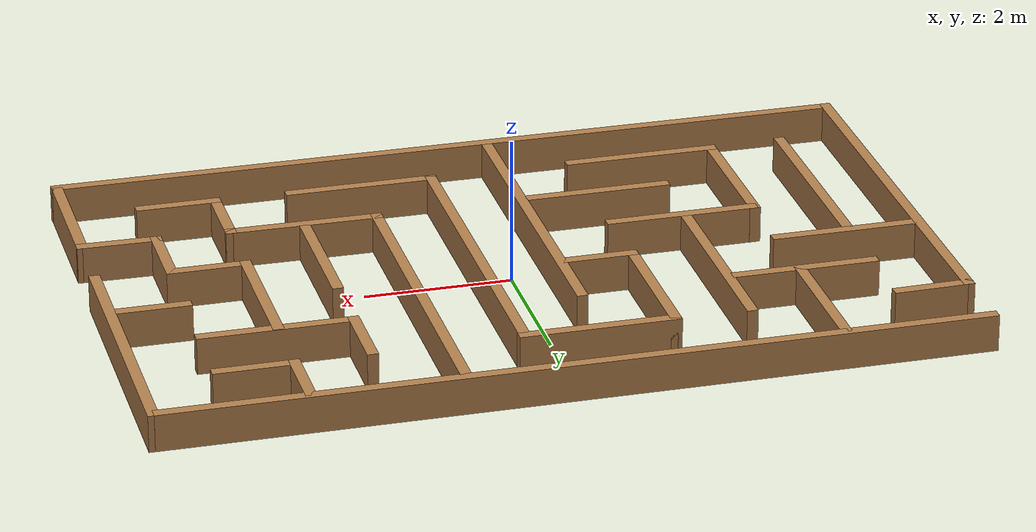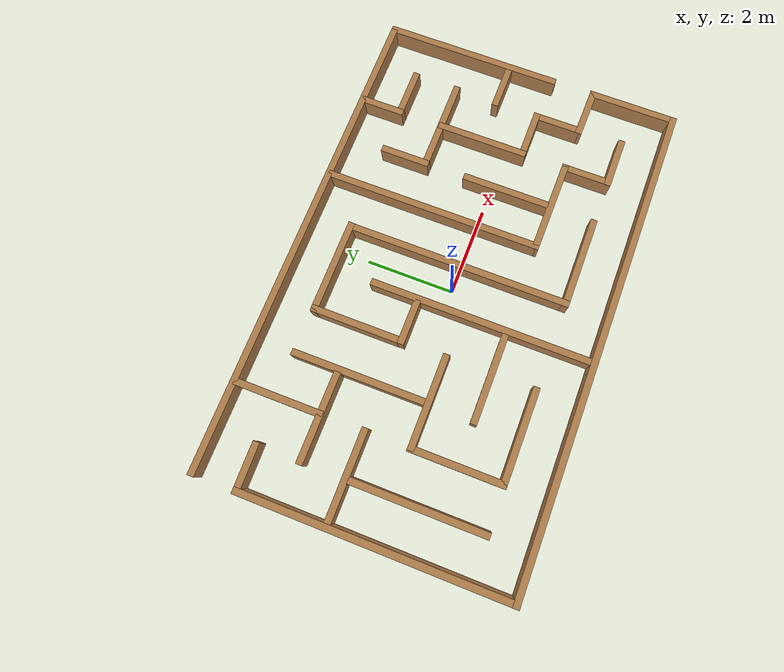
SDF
<?xml version='1.0'?>
<sdf version='1.7'>
  <model name='my_maze1'>
    <pose>0.011421 0.075339 0 0 -0 0</pose>
    <link name='Wall_101'>
      <collision name='Wall_101_Collision'>
        <geometry>
          <box>
            <size>2 0.15 0.5</size>
          </box>
        </geometry>
        <pose>0 0 0.25 0 -0 0</pose>
      </collision>
      <visual name='Wall_101_Visual'>
        <pose>0 0 0.25 0 -0 0</pose>
        <geometry>
          <box>
            <size>2 0.15 0.5</size>
          </box>
        </geometry>
        <material>
          <script>
            <uri>file://media/materials/scripts/gazebo.material</uri>
            <name>Gazebo/Wood</name>
          </script>
          <ambient>0.937255 0.160784 0.160784 1</ambient>
        </material>
        <meta>
          <layer>0</layer>
        </meta>
      </visual>
      <pose>-1.50342 1.57566 0 0 -0 -1.5708</pose>
    </link>
    <link name='Wall_11'>
      <collision name='Wall_11_Collision'>
        <geometry>
          <box>
            <size>11 0.15 0.5</size>
          </box>
        </geometry>
        <pose>0 0 0.25 0 -0 0</pose>
      </collision>
      <visual name='Wall_11_Visual'>
        <pose>0 0 0.25 0 -0 0</pose>
        <geometry>
          <box>
            <size>11 0.15 0.5</size>
          </box>
        </geometry>
        <material>
          <script>
            <uri>file://media/materials/scripts/gazebo.material</uri>
            <name>Gazebo/Wood</name>
          </script>
          <ambient>0.937255 0.160784 0.160784 1</ambient>
        </material>
        <meta>
          <layer>0</layer>
        </meta>
      </visual>
      <pose>-0.031421 3.44566 0 0 -0 0</pose>
    </link>
    <link name='Wall_111'>
      <collision name='Wall_111_Collision'>
        <geometry>
          <box>
            <size>1.02 0.15 0.5</size>
          </box>
        </geometry>
        <pose>0 0 0.25 0 -0 0</pose>
      </collision>
      <visual name='Wall_111_Visual'>
        <pose>0 0 0.25 0 -0 0</pose>
        <geometry>
          <box>
            <size>1.02 0.15 0.5</size>
          </box>
        </geometry>
        <material>
          <script>
            <uri>file://media/materials/scripts/gazebo.material</uri>
            <name>Gazebo/Wood</name>
          </script>
          <ambient>0.937255 0.160784 0.160784 1</ambient>
        </material>
        <meta>
          <layer>0</layer>
        </meta>
      </visual>
      <pose>-1.06442 0.506661 0 0 -0 3.14159</pose>
    </link>
    <link name='Wall_113'>
      <collision name='Wall_113_Collision'>
        <geometry>
          <box>
            <size>2 0.15 0.5</size>
          </box>
        </geometry>
        <pose>0 0 0.25 0 -0 0</pose>
      </collision>
      <visual name='Wall_113_Visual'>
        <pose>0 0 0.25 0 -0 0</pose>
        <geometry>
          <box>
            <size>2 0.15 0.5</size>
          </box>
        </geometry>
        <material>
          <script>
            <uri>file://media/materials/scripts/gazebo.material</uri>
            <name>Gazebo/Wood</name>
          </script>
          <ambient>0.937255 0.160784 0.160784 1</ambient>
        </material>
        <meta>
          <layer>0</layer>
        </meta>
      </visual>
      <pose>-4.42242 0.524661 0 0 -0 3.14159</pose>
    </link>
    <link name='Wall_115'>
      <collision name='Wall_115_Collision'>
        <geometry>
          <box>
            <size>3.02 0.15 0.5</size>
          </box>
        </geometry>
        <pose>0 0 0.25 0 -0 0</pose>
      </collision>
      <visual name='Wall_115_Visual'>
        <pose>0 0 0.25 0 -0 0</pose>
        <geometry>
          <box>
            <size>3.02 0.15 0.5</size>
          </box>
        </geometry>
        <material>
          <script>
            <uri>file://media/materials/scripts/gazebo.material</uri>
            <name>Gazebo/Wood</name>
          </script>
          <ambient>0.937255 0.160784 0.160784 1</ambient>
        </material>
        <meta>
          <layer>0</layer>
        </meta>
      </visual>
      <pose>-4.49442 -1.04834 0 0 -0 1.5708</pose>
    </link>
    <link name='Wall_121'>
      <collision name='Wall_121_Collision'>
        <geometry>
          <box>
            <size>3 0.15 0.5</size>
          </box>
        </geometry>
        <pose>0 0 0.25 0 -0 0</pose>
      </collision>
      <visual name='Wall_121_Visual'>
        <pose>0 0 0.25 0 -0 0</pose>
        <geometry>
          <box>
            <size>3 0.15 0.5</size>
          </box>
        </geometry>
        <material>
          <script>
            <uri>file://media/materials/scripts/gazebo.material</uri>
            <name>Gazebo/Wood</name>
          </script>
          <ambient>0.937255 0.160784 0.160784 1</ambient>
        </material>
        <meta>
          <layer>0</layer>
        </meta>
      </visual>
      <pose>-2.51842 1.07566 0 0 -0 -1.5708</pose>
    </link>
    <link name='Wall_123'>
      <collision name='Wall_123_Collision'>
        <geometry>
          <box>
            <size>2.1 0.15 0.5</size>
          </box>
        </geometry>
        <pose>0 0 0.25 0 -0 0</pose>
      </collision>
      <visual name='Wall_123_Visual'>
        <pose>0 0 0.25 0 -0 0</pose>
        <geometry>
          <box>
            <size>2.1 0.15 0.5</size>
          </box>
        </geometry>
        <material>
          <script>
            <uri>file://media/materials/scripts/gazebo.material</uri>
            <name>Gazebo/Wood</name>
          </script>
          <ambient>1 0 0 1</ambient>
        </material>
        <meta>
          <layer>0</layer>
        </meta>
      </visual>
      <pose>-2.47842 -0.490339 0 0 -0 3.14159</pose>
    </link>
    <link name='Wall_129'>
      <collision name='Wall_129_Collision'>
        <geometry>
          <box>
            <size>2 0.15 0.5</size>
          </box>
        </geometry>
        <pose>0 0 0.25 0 -0 0</pose>
      </collision>
      <visual name='Wall_129_Visual'>
        <pose>0 0 0.25 0 -0 0</pose>
        <geometry>
          <box>
            <size>2 0.15 0.5</size>
          </box>
        </geometry>
        <material>
          <script>
            <uri>file://media/materials/scripts/gazebo.material</uri>
            <name>Gazebo/Wood</name>
          </script>
          <ambient>1 0 0 1</ambient>
        </material>
        <meta>
          <layer>0</layer>
        </meta>
      </visual>
      <pose>-1.59342 -1.50434 0 0 -0 0</pose>
    </link>
    <link name='Wall_131'>
      <collision name='Wall_131_Collision'>
        <geometry>
          <box>
            <size>2 0.15 0.5</size>
          </box>
        </geometry>
        <pose>0 0 0.25 0 -0 0</pose>
      </collision>
      <visual name='Wall_131_Visual'>
        <pose>0 0 0.25 0 -0 0</pose>
        <geometry>
          <box>
            <size>2 0.15 0.5</size>
          </box>
        </geometry>
        <material>
          <script>
            <uri>file://media/materials/scripts/gazebo.material</uri>
            <name>Gazebo/Wood</name>
          </script>
          <ambient>0.937255 0.160784 0.160784 1</ambient>
        </material>
        <meta>
          <layer>0</layer>
        </meta>
      </visual>
      <pose>2.48358 -0.418339 0 0 -0 -1.5708</pose>
    </link>
    <link name='Wall_135'>
      <collision name='Wall_135_Collision'>
        <geometry>
          <box>
            <size>2 0.15 0.5</size>
          </box>
        </geometry>
        <pose>0 0 0.25 0 -0 0</pose>
      </collision>
      <visual name='Wall_135_Visual'>
        <pose>0 0 0.25 0 -0 0</pose>
        <geometry>
          <box>
            <size>2 0.15 0.5</size>
          </box>
        </geometry>
        <material>
          <script>
            <uri>file://media/materials/scripts/gazebo.material</uri>
            <name>Gazebo/Wood</name>
          </script>
          <ambient>0.937255 0.160784 0.160784 1</ambient>
        </material>
        <meta>
          <layer>0</layer>
        </meta>
      </visual>
      <pose>-3.49742 2.45066 0 0 -0 -1.5708</pose>
    </link>
    <link name='Wall_137'>
      <collision name='Wall_137_Collision'>
        <geometry>
          <box>
            <size>2 0.15 0.5</size>
          </box>
        </geometry>
        <pose>0 0 0.25 0 -0 0</pose>
      </collision>
      <visual name='Wall_137_Visual'>
        <pose>0 0 0.25 0 -0 0</pose>
        <geometry>
          <box>
            <size>2 0.15 0.5</size>
          </box>
        </geometry>
        <material>
          <script>
            <uri>file://media/materials/scripts/gazebo.material</uri>
            <name>Gazebo/Wood</name>
          </script>
          <ambient>0.937255 0.160784 0.160784 1</ambient>
        </material>
        <meta>
          <layer>0</layer>
        </meta>
      </visual>
      <pose>-3.56942 1.50366 0 0 -0 0</pose>
    </link>
    <link name='Wall_139'>
      <collision name='Wall_139_Collision'>
        <geometry>
          <box>
            <size>1 0.15 0.5</size>
          </box>
        </geometry>
        <pose>0 0 0.25 0 -0 0</pose>
      </collision>
      <visual name='Wall_139_Visual'>
        <pose>0 0 0.25 0 -0 0</pose>
        <geometry>
          <box>
            <size>1 0.15 0.5</size>
          </box>
        </geometry>
        <material>
          <script>
            <uri>file://media/materials/scripts/gazebo.material</uri>
            <name>Gazebo/Wood</name>
          </script>
          <ambient>0.937255 0.160784 0.160784 1</ambient>
        </material>
        <meta>
          <layer>0</layer>
        </meta>
      </visual>
      <pose>4.90258 0.524661 0 0 -0 0</pose>
    </link>
    <link name='Wall_141'>
      <collision name='Wall_141_Collision'>
        <geometry>
          <box>
            <size>2.11 0.15 0.5</size>
          </box>
        </geometry>
        <pose>0 0 0.25 0 -0 0</pose>
      </collision>
      <visual name='Wall_141_Visual'>
        <pose>0 0 0.25 0 -0 0</pose>
        <geometry>
          <box>
            <size>2.11 0.15 0.5</size>
          </box>
        </geometry>
        <material>
          <script>
            <uri>file://media/materials/scripts/gazebo.material</uri>
            <name>Gazebo/Wood</name>
          </script>
          <ambient>0.937255 0.160784 0.160784 1</ambient>
        </material>
        <meta>
          <layer>0</layer>
        </meta>
      </visual>
      <pose>3.48058 0.506661 0 0 -0 -1.5708</pose>
    </link>
    <link name='Wall_146'>
      <collision name='Wall_146_Collision'>
        <geometry>
          <box>
            <size>1.1647 0.15 0.5</size>
          </box>
        </geometry>
        <pose>0 0 0.25 0 -0 0</pose>
      </collision>
      <visual name='Wall_146_Visual'>
        <pose>0 0 0.25 0 -0 0</pose>
        <geometry>
          <box>
            <size>1.1647 0.15 0.5</size>
          </box>
        </geometry>
        <material>
          <script>
            <uri>file://media/materials/scripts/gazebo.material</uri>
            <name>Gazebo/Wood</name>
          </script>
          <ambient>0.937255 0.160784 0.160784 1</ambient>
        </material>
        <meta>
          <layer>0</layer>
        </meta>
      </visual>
      <pose>3.98808 -2.50134 0 0 -0 3.14159</pose>
    </link>
    <link name='Wall_148'>
      <collision name='Wall_148_Collision'>
        <geometry>
          <box>
            <size>1.18191 0.15 0.5</size>
          </box>
        </geometry>
        <pose>0 0 0.25 0 -0 0</pose>
      </collision>
      <visual name='Wall_148_Visual'>
        <pose>0 0 0.25 0 -0 0</pose>
        <geometry>
          <box>
            <size>1.18191 0.15 0.5</size>
          </box>
        </geometry>
        <material>
          <script>
            <uri>file://media/materials/scripts/gazebo.material</uri>
            <name>Gazebo/Wood</name>
          </script>
          <ambient>0.937255 0.160784 0.160784 1</ambient>
        </material>
        <meta>
          <layer>0</layer>
        </meta>
      </visual>
      <pose>4.47758 -0.988339 0 0 -0 -1.5708</pose>
    </link>
    <link name='Wall_150'>
      <collision name='Wall_150_Collision'>
        <geometry>
          <box>
            <size>1 0.15 0.5</size>
          </box>
        </geometry>
        <pose>0 0 0.25 0 -0 0</pose>
      </collision>
      <visual name='Wall_150_Visual'>
        <pose>0 0 0.25 0 -0 0</pose>
        <geometry>
          <box>
            <size>1 0.15 0.5</size>
          </box>
        </geometry>
        <material>
          <script>
            <uri>file://media/materials/scripts/gazebo.material</uri>
            <name>Gazebo/Wood</name>
          </script>
          <ambient>0.937255 0.160784 0.160784 1</ambient>
        </material>
        <meta>
          <layer>0</layer>
        </meta>
      </visual>
      <pose>4.05258 -0.472339 0 0 -0 3.14159</pose>
    </link>
    <link name='Wall_152'>
      <collision name='Wall_152_Collision'>
        <geometry>
          <box>
            <size>2 0.15 0.5</size>
          </box>
        </geometry>
        <pose>0 0 0.25 0 -0 0</pose>
      </collision>
      <visual name='Wall_152_Visual'>
        <pose>0 0 0.25 0 -0 0</pose>
        <geometry>
          <box>
            <size>2 0.15 0.5</size>
          </box>
        </geometry>
        <material>
          <script>
            <uri>file://media/materials/scripts/gazebo.material</uri>
            <name>Gazebo/Wood</name>
          </script>
          <ambient>0.937255 0.160784 0.160784 1</ambient>
        </material>
        <meta>
          <layer>0</layer>
        </meta>
      </visual>
      <pose>3.55258 1.50366 0 0 -0 3.14159</pose>
    </link>
    <link name='Wall_154'>
      <collision name='Wall_154_Collision'>
        <geometry>
          <box>
            <size>1.13 0.15 0.5</size>
          </box>
        </geometry>
        <pose>0 0 0.25 0 -0 0</pose>
      </collision>
      <visual name='Wall_154_Visual'>
        <pose>0 0 0.25 0 -0 0</pose>
        <geometry>
          <box>
            <size>1.13 0.15 0.5</size>
          </box>
        </geometry>
        <material>
          <script>
            <uri>file://media/materials/scripts/gazebo.material</uri>
            <name>Gazebo/Wood</name>
          </script>
          <ambient>0.937255 0.160784 0.160784 1</ambient>
        </material>
        <meta>
          <layer>0</layer>
        </meta>
      </visual>
      <pose>2.48358 1.99366 0 0 -0 -1.5708</pose>
    </link>
    <link name='Wall_158'>
      <collision name='Wall_158_Collision'>
        <geometry>
          <box>
            <size>1 0.15 0.5</size>
          </box>
        </geometry>
        <pose>0 0 0.25 0 -0 0</pose>
      </collision>
      <visual name='Wall_158_Visual'>
        <pose>0 0 0.25 0 -0 0</pose>
        <geometry>
          <box>
            <size>1 0.15 0.5</size>
          </box>
        </geometry>
        <material>
          <script>
            <uri>file://media/materials/scripts/gazebo.material</uri>
            <name>Gazebo/Wood</name>
          </script>
          <ambient>0.937255 0.160784 0.160784 1</ambient>
        </material>
        <meta>
          <layer>0</layer>
        </meta>
      </visual>
      <pose>4.05258 2.51866 0 0 -0 3.14159</pose>
    </link>
    <link name='Wall_163'>
      <collision name='Wall_163_Collision'>
        <geometry>
          <box>
            <size>1.025 0.15 0.5</size>
          </box>
        </geometry>
        <pose>0 0 0.25 0 -0 0</pose>
      </collision>
      <visual name='Wall_163_Visual'>
        <pose>0 0 0.25 0 -0 0</pose>
        <geometry>
          <box>
            <size>1.025 0.15 0.5</size>
          </box>
        </geometry>
        <material>
          <script>
            <uri>file://media/materials/scripts/gazebo.material</uri>
            <name>Gazebo/Wood</name>
          </script>
          <ambient>0.937255 0.160784 0.160784 1</ambient>
        </material>
        <meta>
          <layer>0</layer>
        </meta>
      </visual>
      <pose>3.48058 2.95516 0 0 -0 -1.5708</pose>
    </link>
    <link name='Wall_168'>
      <collision name='Wall_168_Collision'>
        <geometry>
          <box>
            <size>1.14694 0.15 0.5</size>
          </box>
        </geometry>
        <pose>0 0 0.25 0 -0 0</pose>
      </collision>
      <visual name='Wall_168_Visual'>
        <pose>0 0 0.25 0 -0 0</pose>
        <geometry>
          <box>
            <size>1.14694 0.15 0.5</size>
          </box>
        </geometry>
        <material>
          <script>
            <uri>file://media/materials/scripts/gazebo.material</uri>
            <name>Gazebo/Wood</name>
          </script>
          <ambient>0 0 0 1</ambient>
        </material>
        <meta>
          <layer>0</layer>
        </meta>
      </visual>
      <pose>4.97608 -1.51284 0 0 -0 -0.01705</pose>
    </link>
    <link name='Wall_174'>
      <collision name='Wall_174_Collision'>
        <geometry>
          <box>
            <size>2.14 0.15 0.5</size>
          </box>
        </geometry>
        <pose>0 0 0.25 0 -0 0</pose>
      </collision>
      <visual name='Wall_174_Visual'>
        <pose>0 0 0.25 0 -0 0</pose>
        <geometry>
          <box>
            <size>2.14 0.15 0.5</size>
          </box>
        </geometry>
        <material>
          <script>
            <uri>file://media/materials/scripts/gazebo.material</uri>
            <name>Gazebo/Wood</name>
          </script>
          <ambient>0.937255 0.160784 0.160784 1</ambient>
        </material>
        <meta>
          <layer>0</layer>
        </meta>
      </visual>
      <pose>-3.48542 -1.48434 0 0 -0 1.5708</pose>
    </link>
    <link name='Wall_176'>
      <collision name='Wall_176_Collision'>
        <geometry>
          <box>
            <size>2.14697 0.15 0.5</size>
          </box>
        </geometry>
        <pose>0 0 0.25 0 -0 0</pose>
      </collision>
      <visual name='Wall_176_Visual'>
        <pose>0 0 0.25 0 -0 0</pose>
        <geometry>
          <box>
            <size>2.14697 0.15 0.5</size>
          </box>
        </geometry>
        <material>
          <script>
            <uri>file://media/materials/scripts/gazebo.material</uri>
            <name>Gazebo/Wood</name>
          </script>
          <ambient>0.937255 0.160784 0.160784 1</ambient>
        </material>
        <meta>
          <layer>0</layer>
        </meta>
      </visual>
      <pose>-2.48692 -2.47934 0 0 -0 3.14159</pose>
    </link>
    <link name='Wall_24'>
      <collision name='Wall_24_Collision'>
        <geometry>
          <box>
            <size>4.12 0.15 0.5</size>
          </box>
        </geometry>
        <pose>0 0 0.25 0 -0 0</pose>
      </collision>
      <visual name='Wall_24_Visual'>
        <pose>0 0 0.25 0 -0 0</pose>
        <geometry>
          <box>
            <size>4.12 0.15 0.5</size>
          </box>
        </geometry>
        <material>
          <script>
            <uri>file://media/materials/scripts/gazebo.material</uri>
            <name>Gazebo/Wood</name>
          </script>
          <ambient>0.937255 0.160784 0.160784 1</ambient>
        </material>
        <meta>
          <layer>0</layer>
        </meta>
      </visual>
      <pose>5.47458 1.45966 0 0 -0 1.5708</pose>
    </link>
    <link name='Wall_29'>
      <collision name='Wall_29_Collision'>
        <geometry>
          <box>
            <size>11.1 0.15 0.5</size>
          </box>
        </geometry>
        <pose>0 0 0.25 0 -0 0</pose>
      </collision>
      <visual name='Wall_29_Visual'>
        <pose>0 0 0.25 0 -0 0</pose>
        <geometry>
          <box>
            <size>11.1 0.15 0.5</size>
          </box>
        </geometry>
        <material>
          <script>
            <uri>file://media/materials/scripts/gazebo.material</uri>
            <name>Gazebo/Wood</name>
          </script>
          <ambient>0.937255 0.160784 0.160784 1</ambient>
        </material>
        <meta>
          <layer>0</layer>
        </meta>
      </visual>
      <pose>0.000579 -3.44534 0 0 -0 0</pose>
    </link>
    <link name='Wall_31'>
      <collision name='Wall_31_Collision'>
        <geometry>
          <box>
            <size>6.06164 0.15 0.5</size>
          </box>
        </geometry>
        <pose>0 0 0.25 0 -0 0</pose>
      </collision>
      <visual name='Wall_31_Visual'>
        <pose>0 0 0.25 0 -0 0</pose>
        <geometry>
          <box>
            <size>6.06164 0.15 0.5</size>
          </box>
        </geometry>
        <material>
          <script>
            <uri>file://media/materials/scripts/gazebo.material</uri>
            <name>Gazebo/Wood</name>
          </script>
          <ambient>0.937255 0.160784 0.160784 1</ambient>
        </material>
        <meta>
          <layer>0</layer>
        </meta>
      </visual>
      <pose>-5.47442 -0.489839 0 0 -0 -1.5708</pose>
    </link>
    <link name='Wall_49'>
      <collision name='Wall_49_Collision'>
        <geometry>
          <box>
            <size>2 0.15 0.5</size>
          </box>
        </geometry>
        <pose>0 0 0.25 0 -0 0</pose>
      </collision>
      <visual name='Wall_49_Visual'>
        <pose>0 0 0.25 0 -0 0</pose>
        <geometry>
          <box>
            <size>2 0.15 0.5</size>
          </box>
        </geometry>
        <material>
          <script>
            <uri>file://media/materials/scripts/gazebo.material</uri>
            <name>Gazebo/Wood</name>
          </script>
          <ambient>0.937255 0.160784 0.160784 1</ambient>
        </material>
        <meta>
          <layer>0</layer>
        </meta>
      </visual>
      <pose>5.47458 -2.44634 0 0 -0 -1.5708</pose>
    </link>
    <link name='Wall_51'>
      <collision name='Wall_51_Collision'>
        <geometry>
          <box>
            <size>5 0.15 0.5</size>
          </box>
        </geometry>
        <pose>0 0 0.25 0 -0 0</pose>
      </collision>
      <visual name='Wall_51_Visual'>
        <pose>0 0 0.25 0 -0 0</pose>
        <geometry>
          <box>
            <size>5 0.15 0.5</size>
          </box>
        </geometry>
        <material>
          <script>
            <uri>file://media/materials/scripts/gazebo.material</uri>
            <name>Gazebo/Wood</name>
          </script>
          <ambient>0.937255 0.160784 0.160784 1</ambient>
        </material>
        <meta>
          <layer>0</layer>
        </meta>
      </visual>
      <pose>1.48658 0.955661 0 0 -0 1.5708</pose>
    </link>
    <link name='Wall_53'>
      <collision name='Wall_53_Collision'>
        <geometry>
          <box>
            <size>2.14394 0.15 0.5</size>
          </box>
        </geometry>
        <pose>0 0 0.25 0 -0 0</pose>
      </collision>
      <visual name='Wall_53_Visual'>
        <pose>0 0 0.25 0 -0 0</pose>
        <geometry>
          <box>
            <size>2.14394 0.15 0.5</size>
          </box>
        </geometry>
        <material>
          <script>
            <uri>file://media/materials/scripts/gazebo.material</uri>
            <name>Gazebo/Wood</name>
          </script>
          <ambient>0.937255 0.160784 0.160784 1</ambient>
        </material>
        <meta>
          <layer>0</layer>
        </meta>
      </visual>
      <pose>2.48358 -1.47834 0 0 -0 3.13257</pose>
    </link>
    <link name='Wall_55'>
      <collision name='Wall_55_Collision'>
        <geometry>
          <box>
            <size>1.09499 0.15 0.5</size>
          </box>
        </geometry>
        <pose>0 0 0.25 0 -0 0</pose>
      </collision>
      <visual name='Wall_55_Visual'>
        <pose>0 0 0.25 0 -0 0</pose>
        <geometry>
          <box>
            <size>1.09499 0.15 0.5</size>
          </box>
        </geometry>
        <material>
          <script>
            <uri>file://media/materials/scripts/gazebo.material</uri>
            <name>Gazebo/Wood</name>
          </script>
          <ambient>0 0 0 1</ambient>
        </material>
        <meta>
          <layer>0</layer>
        </meta>
      </visual>
      <pose>-5.00192 2.47466 0 0 -0 -3.12255</pose>
    </link>
    <link name='Wall_65'>
      <collision name='Wall_65_Collision'>
        <geometry>
          <box>
            <size>1.16442 0.15 0.5</size>
          </box>
        </geometry>
        <pose>0 0 0.25 0 -0 0</pose>
      </collision>
      <visual name='Wall_65_Visual'>
        <pose>0 0 0.25 0 -0 0</pose>
        <geometry>
          <box>
            <size>1.16442 0.15 0.5</size>
          </box>
        </geometry>
        <material>
          <script>
            <uri>file://media/materials/scripts/gazebo.material</uri>
            <name>Gazebo/Wood</name>
          </script>
          <ambient>0.937255 0.160784 0.160784 1</ambient>
        </material>
        <meta>
          <layer>0</layer>
        </meta>
      </visual>
      <pose>3.48058 -1.99434 0 0 -0 1.5708</pose>
    </link>
    <link name='Wall_69'>
      <collision name='Wall_69_Collision'>
        <geometry>
          <box>
            <size>5 0.15 0.5</size>
          </box>
        </geometry>
        <pose>0 0 0.25 0 -0 0</pose>
      </collision>
      <visual name='Wall_69_Visual'>
        <pose>0 0 0.25 0 -0 0</pose>
        <geometry>
          <box>
            <size>5 0.15 0.5</size>
          </box>
        </geometry>
        <material>
          <script>
            <uri>file://media/materials/scripts/gazebo.material</uri>
            <name>Gazebo/Wood</name>
          </script>
          <ambient>1 0 0 1</ambient>
        </material>
        <meta>
          <layer>0</layer>
        </meta>
      </visual>
      <pose>-0.524421 -0.903339 0 0 -0 -1.5708</pose>
    </link>
    <link name='Wall_79'>
      <collision name='Wall_79_Collision'>
        <geometry>
          <box>
            <size>5 0.15 0.5</size>
          </box>
        </geometry>
        <pose>0 0 0.25 0 -0 0</pose>
      </collision>
      <visual name='Wall_79_Visual'>
        <pose>0 0 0.25 0 -0 0</pose>
        <geometry>
          <box>
            <size>5 0.15 0.5</size>
          </box>
        </geometry>
        <material>
          <script>
            <uri>file://media/materials/scripts/gazebo.material</uri>
            <name>Gazebo/Wood</name>
          </script>
          <ambient>0.937255 0.160784 0.160784 1</ambient>
        </material>
        <meta>
          <layer>0</layer>
        </meta>
      </visual>
      <pose>0.489579 -0.058339 0 0 -0 1.5708</pose>
    </link>
    <link name='Wall_82'>
      <collision name='Wall_82_Collision'>
        <geometry>
          <box>
            <size>2.1 0.15 0.5</size>
          </box>
        </geometry>
        <pose>0 0 0.25 0 -0 0</pose>
      </collision>
      <visual name='Wall_82_Visual'>
        <pose>0 0 0.25 0 -0 0</pose>
        <geometry>
          <box>
            <size>2.1 0.15 0.5</size>
          </box>
        </geometry>
        <material>
          <script>
            <uri>file://media/materials/scripts/gazebo.material</uri>
            <name>Gazebo/Wood</name>
          </script>
          <ambient>0.937255 0.160784 0.160784 1</ambient>
        </material>
        <meta>
          <layer>0</layer>
        </meta>
      </visual>
      <pose>1.46458 -2.48334 0 0 -0 0</pose>
    </link>
    <link name='Wall_99'>
      <collision name='Wall_99_Collision'>
        <geometry>
          <box>
            <size>2.15 0.15 0.5</size>
          </box>
        </geometry>
        <pose>0 0 0.25 0 -0 0</pose>
      </collision>
      <visual name='Wall_99_Visual'>
        <pose>0 0 0.25 0 -0 0</pose>
        <geometry>
          <box>
            <size>2.15 0.15 0.5</size>
          </box>
        </geometry>
        <material>
          <script>
            <uri>file://media/materials/scripts/gazebo.material</uri>
            <name>Gazebo/Wood</name>
          </script>
          <ambient>0.937255 0.160784 0.160784 1</ambient>
        </material>
        <meta>
          <layer>0</layer>
        </meta>
      </visual>
      <pose>-0.503421 2.50066 0 0 -0 0</pose>
    </link>
    <static>1</static>
  </model>
</sdf>
